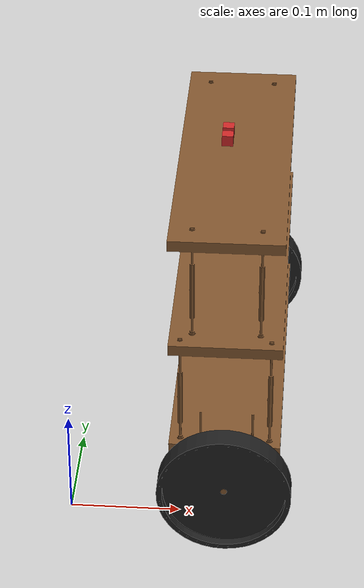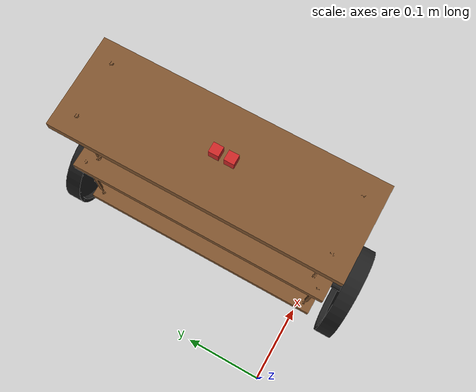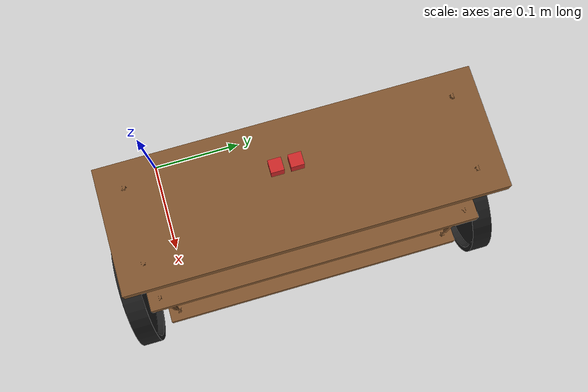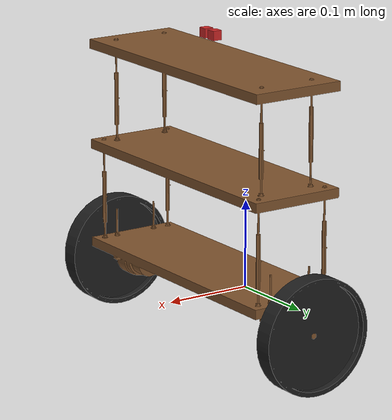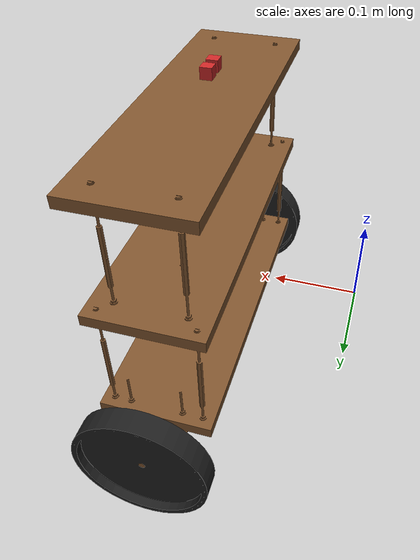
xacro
<?xml version="1.0"?>
<robot
  name="selbie" xmlns:xacro="http://www.ros.org/wiki/xacro">

  <xacro:include filename="$(find selbie)/robots/selbie.gazebo" />
  <!-- Import Rviz colors -->
  <xacro:include filename="$(find selbie)/robots/materials.xacro" />

  <xacro:property name="camera_link" value="0.01" />

  <link name="dummy" />
  <joint name="dummy_joint" type="fixed">
	<origin xyz="0 0 -0.038"/>
	<parent link="dummy" />
	<child  link="selbie_body" />
  </joint>

  <link
    name="selbie_body">
    <inertial>
      <origin
        xyz="0.14214 0.1369 0.15867"
        rpy="0 0 0" />
      <mass
        value="1.0483" />
      <inertia
        ixx="0.022239"
        ixy="4.5674E-09"
        ixz="-5.291E-05"
        iyy="0.0084815"
        iyz="4.6465E-06"
        izz="0.014724" />
    </inertial>
    <visual>
      <origin
        xyz="0 0 0"
        rpy="0 0 0" />
      <geometry>
        <mesh
          filename="package://selbie/meshes/selbie.STL" />
      </geometry>
      <material
        name="brown">
        <texture
          filename="package://selbie/textures/polished cherry.jpg" />
      </material>
    </visual>
    <collision>
      <origin
        xyz="0 0 0"
        rpy="0 0 0" />
      <geometry>
        <mesh
          filename="package://selbie/meshes/selbie.STL" />
      </geometry>
      <surface>
          <friction>
            <ode>
              <mu>100</mu>
              <mu2>50</mu2>
            </ode>
          </friction>
	  <bounce>
              <restitution_coefficient>0</restitution_coefficient>
              <threshold>5</threshold>
            </bounce>
	   <contact>
              <ode>
                <max_vel>0</max_vel>
              </ode>
            </contact>
        </surface>
    </collision>
  </link>

<!--IMU : joint , link , sensor  -->
 <joint name="IMU_joint" type="fixed">
    <axis xyz="0 1 0"/>
    <origin xyz="0.135 0.135 0.365" rpy="0 0 0"/>
    <parent link="selbie_body"/>
    <child link="IMU_link"/>
  </joint>

<link name="IMU_link">
  <inertial>
    <mass value="0.001"/>
    <origin rpy="0 0 0" xyz="0 0 0"/>
    <inertia ixx="0.0001" ixy="0" ixz="0" iyy="0.000001" iyz="0" izz="0.0001"/>
  </inertial>
  <visual>
    <origin rpy="0 0 0" xyz="0 0 0"/>
    <geometry>
      <box size="0.01 0.01 0.01"/>
    </geometry>
    <material name="red"/>
  </visual>
  <collision>
    <origin rpy="0 0 0" xyz="0 0 0"/>
    <geometry>
      <box size=".01 .01 .01"/>
    </geometry>
  </collision>
</link>

<!-- Camera Link -->

  <joint name="camera_joint" type="fixed">
    <axis xyz="0 1 0" />
    <origin xyz="0.135 0.12 0.365" rpy="0 0 0"/>
    <parent link="selbie_body"/>
    <child link="camera_link"/>
  </joint>

  <!-- Camera -->
  <link name="camera_link">
    <collision>
      <origin xyz="0 0 0" rpy="0 0 0"/>
      <geometry>
    <box size="${camera_link} ${camera_link} ${camera_link}"/>
      </geometry>
    </collision>

    <visual>
      <origin xyz="0 0 0" rpy="0 0 0"/>
      <geometry>
    <box size="${camera_link} ${camera_link} ${camera_link}"/>
      </geometry>
      <material name="red"/>
    </visual>

    <inertial>
      <mass value="1e-5" />
      <origin xyz="0 0 0" rpy="0 0 0"/>
      <inertia ixx="1e-6" ixy="0" ixz="0" iyy="1e-6" iyz="0" izz="1e-6" />
    </inertial>
  </link>

<!-- Right Wheel -->
  <link
    name="selbie_rightWheel">
    <inertial>
      <origin
        xyz="8.582E-12 4.0312E-12 -0.017408"
        rpy="0 0 0" />
      <mass
        value="0.043417" />
      <inertia
        ixx="1.8225E-05"
        ixy="4.3753E-15"
        ixz="5.3517E-15"
        iyy="1.8225E-05"
        iyz="2.3697E-15"
        izz="3.4618E-05" />
    </inertial>
    <visual>
      <origin
        xyz="0 0 0"
        rpy="0 0 0" />
      <geometry>
        <mesh
          filename="package://selbie/meshes/selbie_rightWheel.STL" />
      </geometry>
      <material
        name="black">
        <texture
          filename="package://selbie/textures/marble4.jpg" />
      </material>
    </visual>
    <collision>
      <origin
        xyz="0 0 0"
        rpy="0 0 0" />
      <geometry>
        <mesh
          filename="package://selbie/meshes/selbie_rightWheel.STL" />
      </geometry>
      <surface>
          <friction>
            <ode>
              <mu>100</mu>
              <mu2>50</mu2>
            </ode>
          </friction>
	  <bounce>
              <restitution_coefficient>0</restitution_coefficient>
              <threshold>5</threshold>
            </bounce>
	   <contact>
              <ode>
                <max_vel>0</max_vel>
              </ode>
            </contact>
        </surface>
    </collision>

  </link>

  <joint
    name="selbie_rj"
    type="continuous">
    <origin
      xyz="0.14286 -0.023601 0.097857"
      rpy="1.5708 1.2131 3.1416" />
    <parent
      link="selbie_body" />
    <child
      link="selbie_rightWheel" />
    <axis
      xyz="0 0 -1" />
  </joint>

<!-- Left Wheel -->
  <link
    name="selbie_leftWheel">
    <inertial>
      <origin
        xyz="8.582E-12 4.0312E-12 -0.017408"
        rpy="0 0 0" />
      <mass
        value="0.043417" />
      <inertia
        ixx="1.8225E-05"
        ixy="4.3753E-15"
        ixz="5.3517E-15"
        iyy="1.8225E-05"
        iyz="2.3697E-15"
        izz="3.4618E-05" />
    </inertial>
    <visual>
      <origin
        xyz="0 0 0"
        rpy="0 0 0" />
      <geometry>
        <mesh
          filename="package://selbie/meshes/selbie_leftWheel.STL" />
      </geometry>
      <material
        name="black">
        <texture
          filename="package://selbie/textures/marble4.jpg" />
      </material>
    </visual>
    <collision>
      <origin
        xyz="0 0 0"
        rpy="0 0 0" />
      <geometry>
        <mesh
          filename="package://selbie/meshes/selbie_leftWheel.STL" />
      </geometry>
      <surface>
          <friction>
            <ode>
              <mu>100</mu>
              <mu2>50</mu2>
            </ode>
          </friction>
	  <bounce>
              <restitution_coefficient>0</restitution_coefficient>
              <threshold>5</threshold>
            </bounce>
	   <contact>
              <ode>
                <max_vel>0</max_vel>
              </ode>
            </contact>
        </surface>
    </collision>
  </link>

  <joint
    name="selbie_lj"
    type="continuous">
    <origin
      xyz="0.14286 0.2974 0.097857"
      rpy="1.5708 0 0" />
    <parent
      link="selbie_body" />
    <child
      link="selbie_leftWheel" />
    <axis
      xyz="0 0 1" />
  </joint>

<!-- Transmission Tags -->
  <transmission name="tran1">
    <type>transmission_interface/SimpleTransmission</type>
    <joint name="selbie_rj">
      <hardwareInterface>EffortJointInterface</hardwareInterface>
    </joint>
    <actuator name="motor1">
      <hardwareInterface>EffortJointInterface</hardwareInterface>
      <mechanicalReduction>1</mechanicalReduction>
    </actuator>
  </transmission>

  <transmission name="tran2">
    <type>transmission_interface/SimpleTransmission</type>
    <joint name="selbie_lj">
      <hardwareInterface>EffortJointInterface</hardwareInterface>
    </joint>
    <actuator name="motor2">
      <hardwareInterface>EffortJointInterface</hardwareInterface>
      <mechanicalReduction>1</mechanicalReduction>
    </actuator>
  </transmission>

</robot>
